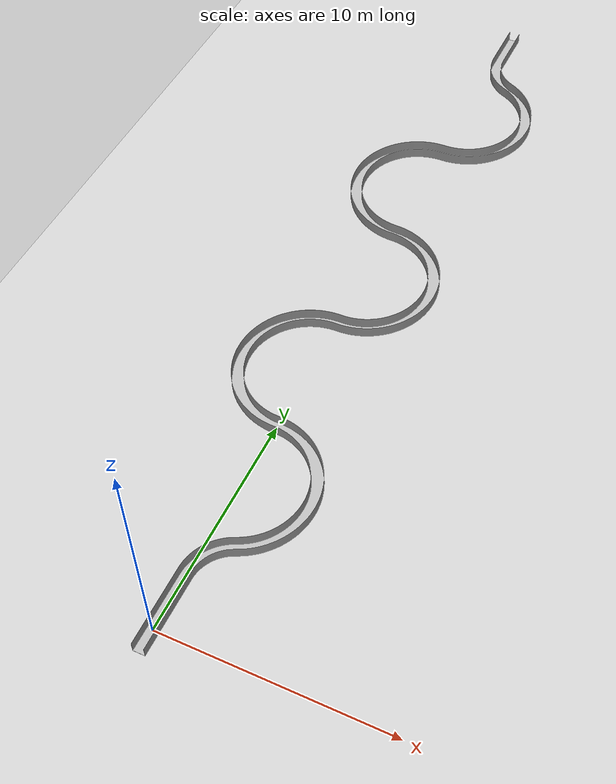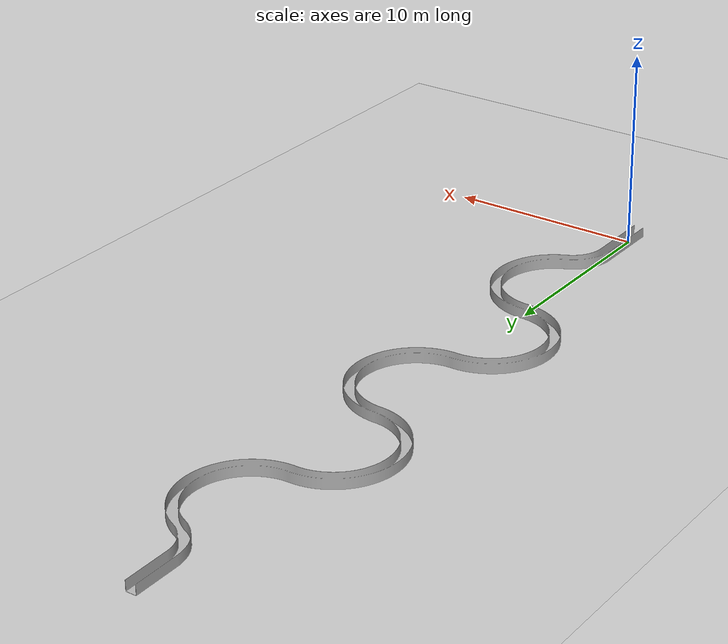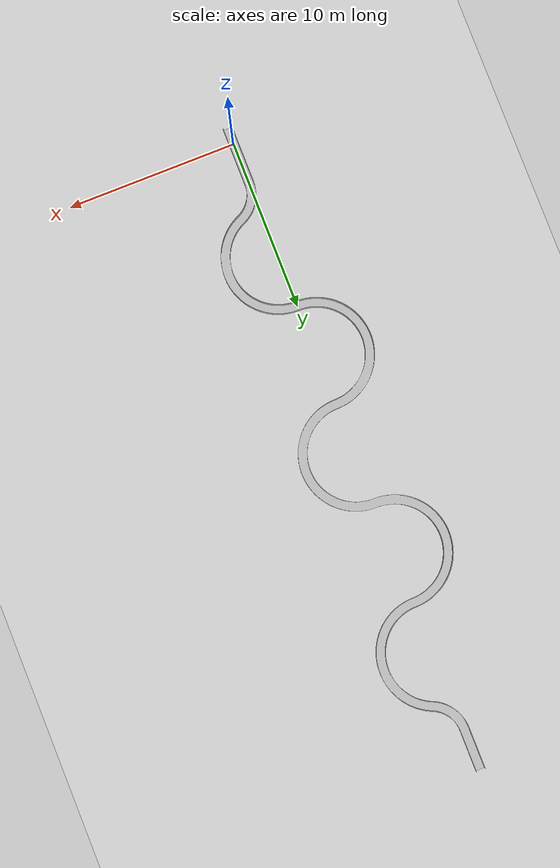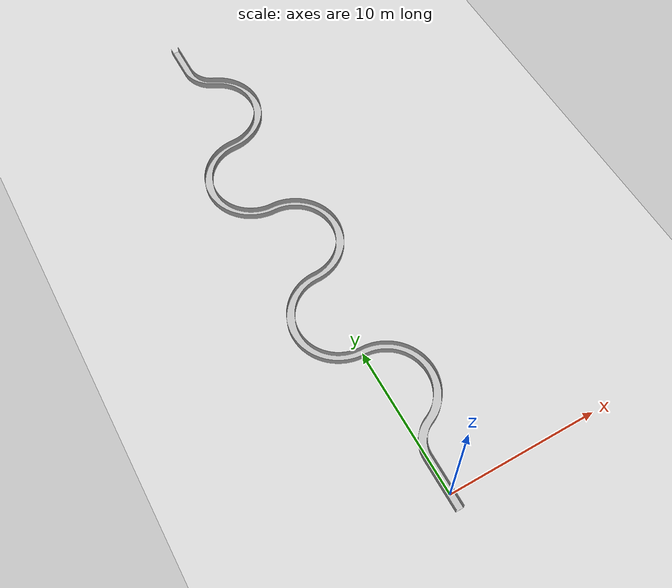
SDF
<?xml version="1.0"?>
<sdf version="1.4">
  <world name="default">
    <include>
      <uri>model://ground_plane</uri>
    </include>
    <include>
      <uri>model://sun</uri>
    </include>
    <model name="my_mesh">
      <pose>0 0 0  0 3.1415927 0</pose>
      <static>true</static>
      <link name="body">
        <visual name="visual">
          <geometry>
            <mesh><uri>file://tube_10m_sin.dae</uri></mesh>
          </geometry>
        </visual>
      </link>
    </model>
  </world>
</sdf>
